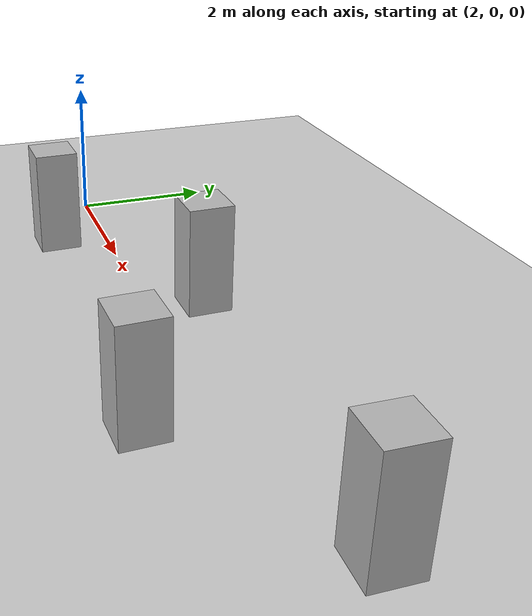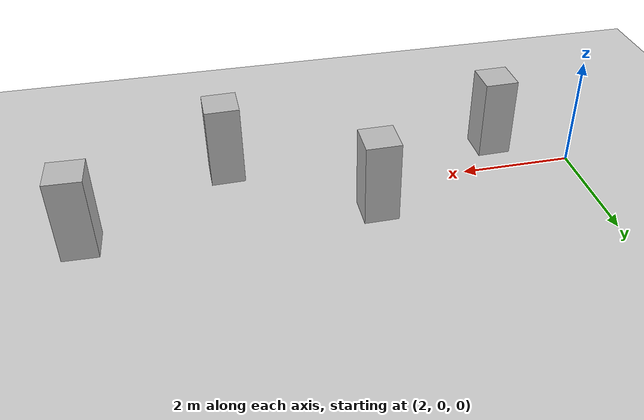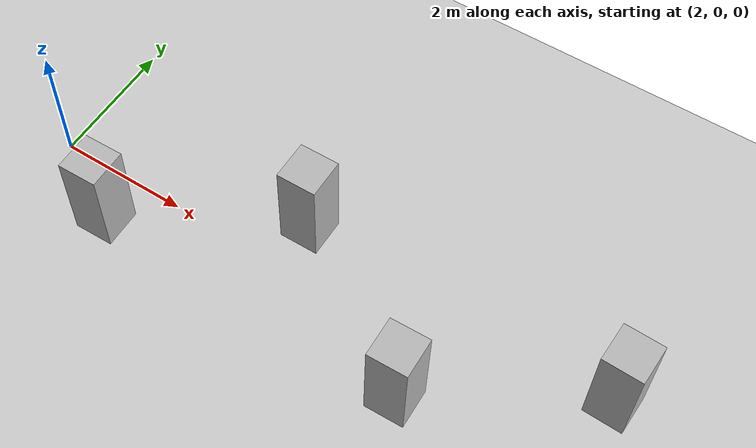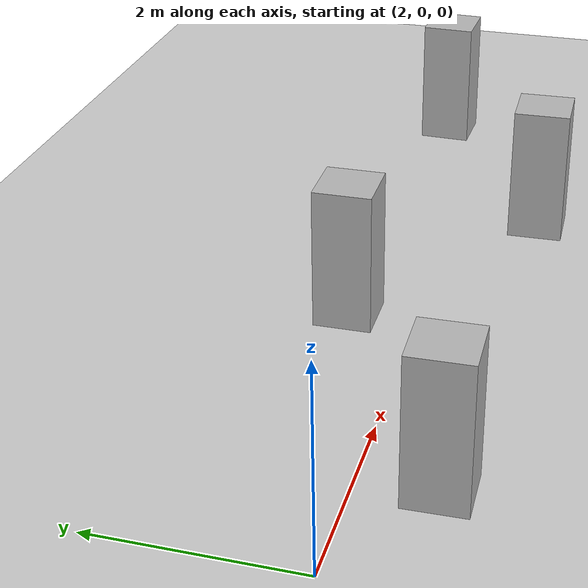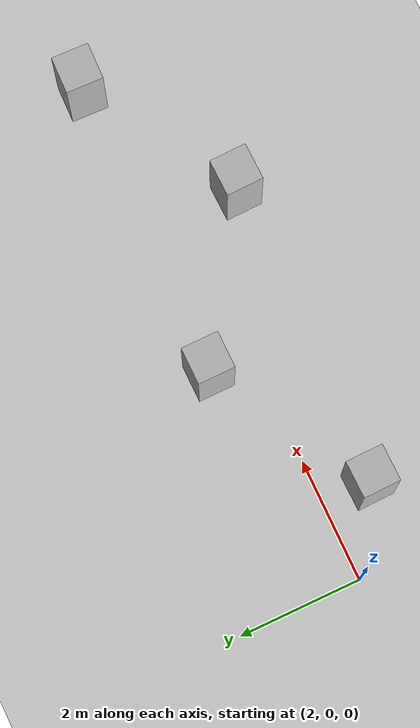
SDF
<?xml version="1.0"?>
<sdf version="1.6">
  <world name="v2-04g-r2-static-s4959">
    <gravity>0 0 -9.81</gravity>
    <physics name="v2_deterministic" type="ode">
      <max_step_size>0.002</max_step_size>
      <real_time_update_rate>500</real_time_update_rate>
    </physics>
    <include>
      <uri>model://sun</uri>
    </include>
    <include>
      <uri>model://ground_plane</uri>
    </include>
    <model name="pillar-1">
      <static>true</static>
      <pose>3.261271049 -0.738011966 0.750000000 0 0 0.019181053</pose>
      <link name="link">
        <collision name="collision">
          <geometry>
            <box>
              <size>0.600000 0.600000 1.500000</size>
            </box>
          </geometry>
        </collision>
        <visual name="visual">
          <geometry>
            <box>
              <size>0.600000 0.600000 1.500000</size>
            </box>
          </geometry>
        </visual>
      </link>
    </model>
    <model name="pillar-2">
      <static>true</static>
      <pose>5.815480685 0.730748033 0.750000000 0 0 0.008273304</pose>
      <link name="link">
        <collision name="collision">
          <geometry>
            <box>
              <size>0.600000 0.600000 1.500000</size>
            </box>
          </geometry>
        </collision>
        <visual name="visual">
          <geometry>
            <box>
              <size>0.600000 0.600000 1.500000</size>
            </box>
          </geometry>
        </visual>
      </link>
    </model>
    <model name="pillar-3">
      <static>true</static>
      <pose>8.238418031 -0.875312454 0.750000000 0 0 0.025903736</pose>
      <link name="link">
        <collision name="collision">
          <geometry>
            <box>
              <size>0.600000 0.600000 1.500000</size>
            </box>
          </geometry>
        </collision>
        <visual name="visual">
          <geometry>
            <box>
              <size>0.600000 0.600000 1.500000</size>
            </box>
          </geometry>
        </visual>
      </link>
    </model>
    <model name="pillar-4">
      <static>true</static>
      <pose>10.705034010 0.626352003 0.750000000 0 0 -0.029951638</pose>
      <link name="link">
        <collision name="collision">
          <geometry>
            <box>
              <size>0.600000 0.600000 1.500000</size>
            </box>
          </geometry>
        </collision>
        <visual name="visual">
          <geometry>
            <box>
              <size>0.600000 0.600000 1.500000</size>
            </box>
          </geometry>
        </visual>
      </link>
    </model>
  </world>
</sdf>
